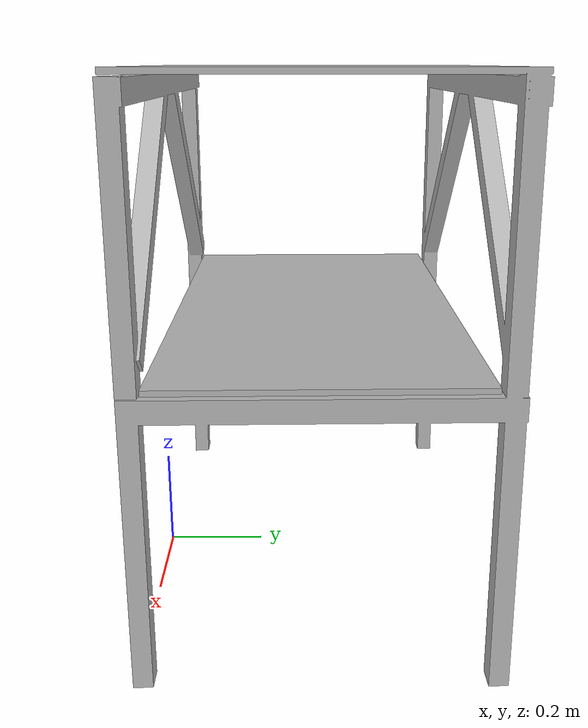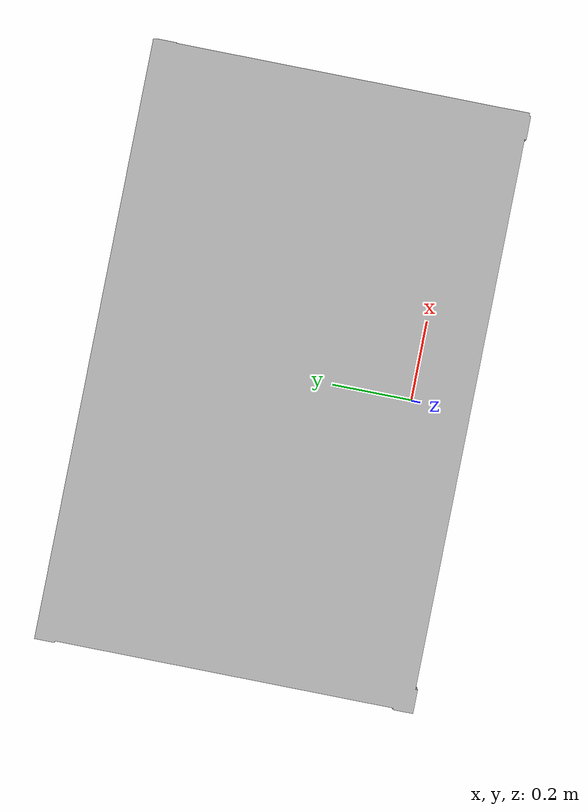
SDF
<?xml version="1.0" ?>
<sdf version="1.4">
  <model name="WPtable">
    <link name="link">
      <collision name="collision">
        <geometry>
         <mesh>
           <uri>model://WPtable/meshes/WPtable.dae</uri>
          </mesh>
        </geometry>
      </collision>
      <visual name="visual">
        <geometry>
          <mesh>
            <uri>model://WPtable/meshes/WPtable.dae</uri>
          </mesh>
        </geometry>
      </visual>
    </link>
  </model>
</sdf>
